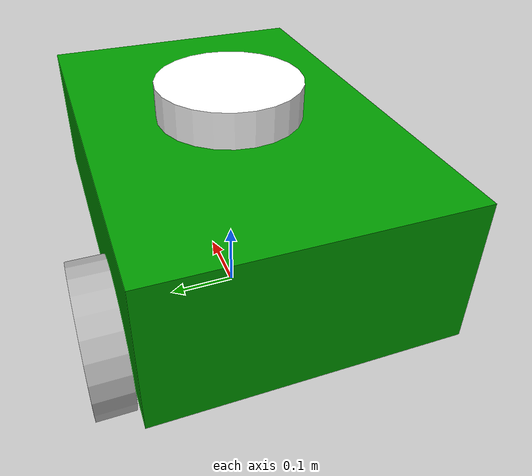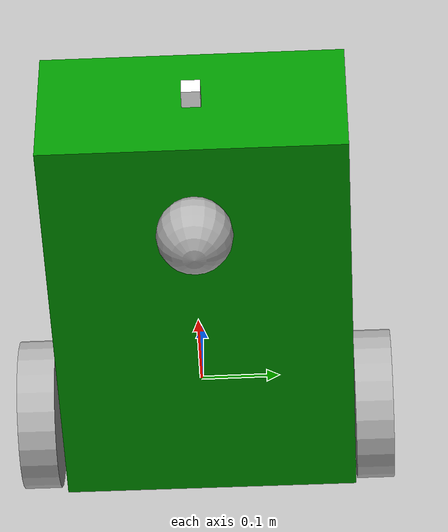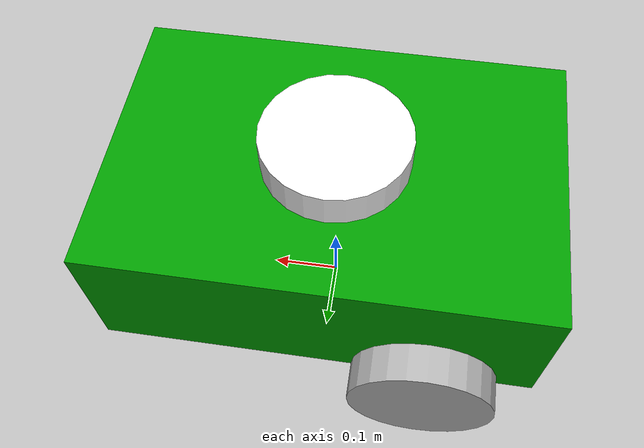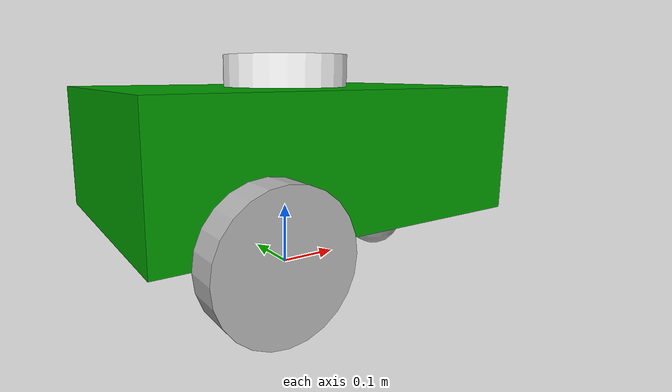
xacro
<?xml version="1.0"?>
<robot name="my_robot" xmlns:xacro="http://www.ros.org/wiki/xacro">

    <!-- Other xacro files -->
    <xacro:include filename="materials.urdf.xacro" />
    <xacro:include filename="inertials.urdf.xacro" />

    <!-- Xacro properties -->
    <xacro:property name="radius_wheels" value="0.1" />
    <xacro:property name="radius_caster_wheel" value="0.05" />
    <xacro:property name="length" value="0.05" />

    <!-- Xacro links -->
    <xacro:macro name="wheels" params="prefix">
        <link name="${prefix}_wheel_link">
            <visual>
                <geometry>
                    <cylinder radius="${radius_wheels}" length="${length}" />
                </geometry>
                <origin xyz="0 0 0" rpy="1.57 0 0" />
                <material name="grey" />
            </visual>

            <collision>
                <geometry>
                    <cylinder radius="${radius_wheels}" length="${length}" />
                </geometry>
                <origin xyz="0 0 0" rpy="1.57 0 0" />
            </collision>
            <xacro:solid_cylinder_inertia
                mass="0.5" radius="${radius_wheels}" length="${length}"
                xyz="0 0 0" rpy="1.57 0 0" />
        </link>
    </xacro:macro>

    <!-- Xacro joints -->
    <xacro:macro name="fixed_joint" params="prefix parent child xyz rpy">
        <joint name="${prefix}_joint" type="fixed">
            <parent link="${parent}" />
            <child link="${child}" />
            <origin xyz="${xyz}" rpy="${rpy}" />
        </joint>
    </xacro:macro>

    <xacro:macro name="continuous_joint" params="prefix parent child xyz rpy axis">
        <joint name="${prefix}_joint" type="continuous">
            <parent link="${parent}" />
            <child link="${child}" />
            <origin xyz="${xyz}" rpy="${rpy}" />
            <axis xyz="${axis}" />
        </joint>
    </xacro:macro>

    <!-- Links Section -->
    <link name="base_link" />
    <link name="main_body_link">
        <visual>
            <geometry>
                <box size="0.6 0.4 0.2" />
            </geometry>
            <origin xyz="0 0 0.1" rpy="0 0 0" />
            <material name="green" />
        </visual>
        <collision>
            <geometry>
                <box size="0.6 0.4 0.2" />
            </geometry>
            <origin xyz="0 0 0.1" rpy="0 0 0" />
        </collision>
        <xacro:solid_box_inertia
            mass="5" x="0.6" y="0.4" z="0.2"
            xyz="0 0 0.1" rpy="0 0 0"/>
    </link>

    <link name="camera_link">
        <visual>
            <geometry>
                <box size="0.025 0.025 0.025" />
            </geometry>
            <origin xyz="0 0 0" rpy="0 0 0" />
            <material name="white" />
        </visual>
        <collision>
            <geometry>
                <box size="0.025 0.025 0.025" />
            </geometry>
            <origin xyz="0 0 0" rpy="0 0 0" />
        </collision>
        <xacro:solid_box_inertia
            mass="0.01" x="0.025" y="0.025" z="0.025"
            xyz="0 0 0" rpy="0 0 0"/>
    </link>

    <link name="lidar_link">
        <visual>
            <geometry>
                <cylinder radius="${radius_wheels}" length="${length}" />
            </geometry>
            <origin xyz="0 0 0" rpy="0 0 0" />
            <material name="white" />
        </visual>
        <collision>
            <geometry>
                <cylinder radius="${radius_wheels}" length="${length}" />
            </geometry>
            <origin xyz="0 0 0" rpy="0 0 0" />
        </collision>
    </link>

    <link name="caster_wheel_link">
        <visual>
            <geometry>
                <sphere radius="${radius_caster_wheel}" />
            </geometry>
            <origin xyz="0 0 0" rpy="0 0 0" />
            <material name="grey" />
        </visual>
        <collision>
            <geometry>
                <sphere radius="${radius_caster_wheel}" />
            </geometry>
            <origin xyz="0 0 0" rpy="0 0 0" />
        </collision>
        <xacro:solid_sphere_inertia mass="0.2" radius="${radius_caster_wheel}"/>
    </link>
    <xacro:wheels prefix="left" />
    <xacro:wheels prefix="right" />

    <!-- Joints Section-->
    <xacro:fixed_joint
        prefix="base"
        parent="base_link"
        child="main_body_link"
        xyz="0 0 0.1" rpy="0 0 0"/>

    <xacro:fixed_joint
        prefix="base_camera"
        parent="main_body_link"
        child="camera_link"
        xyz="0.3125 0 0.1" rpy="0 0 0"/>

    <xacro:fixed_joint
        prefix="base_lidar"
        parent="main_body_link"
        child="lidar_link"
        xyz="0 0 0.225" rpy="0 0 0"/>

    <xacro:fixed_joint
        prefix="base_caster_wheel"
        parent="main_body_link"
        child="caster_wheel_link"
        xyz="0.2 0 -${radius_caster_wheel}" rpy="0 0 0" />

    <xacro:continuous_joint
        prefix="base_left_wheel"
        parent="main_body_link"
        child="left_wheel_link"
        xyz="-0.15 0.225 0" rpy="0 0 0"
        axis="0 1 0"/>

    <xacro:continuous_joint
        prefix="base_right_wheel"
        parent="main_body_link"
        child="right_wheel_link"
        xyz="-0.15 -0.225 0" rpy="0 0 0"
        axis="0 1 0"/>

    <!-- Gazebo Section -->
    <gazebo>
        <plugin
            filename="gz-sim-diff-drive-system"
            name="gz::sim::systems::DiffDrive">

            <left_joint>base_left_wheel_joint</left_joint>
            <right_joint>base_right_wheel_joint</right_joint>

            <wheel_separation>0.45</wheel_separation>
            <wheel_radius>${radius_wheels}</wheel_radius>

            <topic>cmd_vel</topic>

        </plugin>
    </gazebo>

    <!-- Camera sensor -->
    <gazebo reference="camera_link">
        <sensor name="camera" type="camera">
            <pose relative_to="camera_link">0 0 0 0 0 0</pose>
            <topic>camera</topic>
            <update_rate>30.0</update_rate>

            <camera>
                <horizontal_fov>1.047</horizontal_fov>
                <image>
                    <width>640</width>
                    <height>480</height>
                    <format>R8G8B8</format>
                </image>

                <clip>
                    <near>0.05</near>
                    <far>8.0</far>
                </clip>
            </camera>

            <always_on>1</always_on>
            <visualize>1</visualize>
        </sensor>
    </gazebo>

    <!-- Lidar sensor -->
    <gazebo>
        <plugin
            filename="gz-sim-sensors-system"
            name="gz::sim::systems::Sensors">
            <render_engine>ogre2</render_engine>
        </plugin>
    </gazebo>

    <gazebo reference="lidar_link">
        <sensor name="gpu_lidar" type="gpu_lidar">
            <pose relative_to="lidar_link">0 0 0 0 0 0</pose>
            <topic>lidar</topic>
            <update_rate>2</update_rate>

            <lidar>
                <scan>
                    <horizontal>
                        <samples>720</samples>
                        <resolution>1</resolution>
                        <min_angle>-3.14</min_angle>
                        <max_angle>3.14</max_angle>
                    </horizontal>
                </scan>

                <range>
                    <min>0.01</min>
                    <max>12.0</max>
                    <resolution>0.005</resolution>
                </range>

                <noise>
                    <type>gaussian</type>
                    <mean>0.0</mean>
                    <stddev>0.001</stddev>
                </noise>
            </lidar>

            <always_on>1</always_on>
            <visualize>1</visualize>
        </sensor>
    </gazebo>

</robot>

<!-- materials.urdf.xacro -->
<robot xmlns:xacro="http://www.ros.org/wiki/xacro">
    <material name="grey">
        <color rgba="0.7 0.7 0.7 1" />
    </material>

    <material name="green">
        <color rgba="0 0.6 0 1" />
    </material>

    <material name="white">
        <color rgba="1 1 1 1" />
    </material>

    <material name="black">
        <color rgba="0 0 0 1" />
    </material>
</robot>

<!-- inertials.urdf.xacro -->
<!-- Source of formulas: https://en.wikipedia.org/wiki/List_of_moments_of_inertia -->
<?xml version="1.0"?>
<robot name="inertial_macros" xmlns:xacro="http://www.ros.org/wiki/xacro">

    <xacro:macro name="solid_box_inertia" params="mass x y z">
        <inertial>
            <mass value="${mass}"/>
            <inertia
                ixx="${(1.0/12.0) * mass * (y*y + z*z)}" ixy="0" ixz="0"
                iyy="${(1.0/12.0) * mass * (x*x + z*z)}" iyz="0"
                izz="${(1.0/12.0) * mass * (y*y + x*x)}" />
        </inertial>
    </xacro:macro>

    <xacro:macro name="solid_cylinder_inertia" params="mass radius length">
        <inertial>
            <mass value="${mass}"/>
            <inertia
                ixx="${(1.0/12.0) * mass * (3.0 * (radius*radius) + (length*length))}" ixy="0" ixz="0"
                iyy="${(1.0/12.0) * mass * (3.0 * (radius*radius) + (length*length))}" iyz="0"
                izz="${(1.0/2.0) * mass * (radius*radius)}" />
        </inertial>
    </xacro:macro>

    <xacro:macro name="solid_sphere_inertia" params="mass radius">
        <inertial>
            <mass value="${mass}"/>
            <inertia
                ixx="${(2.0/5.0) * mass * (radius*radius)}" ixy="0" ixz="0"
                iyy="${(2.0/5.0) * mass * (radius*radius)}" iyz="0"
                izz="${(2.0/5.0) * mass * (radius*radius)}" />
        </inertial>
    </xacro:macro>

</robot>
